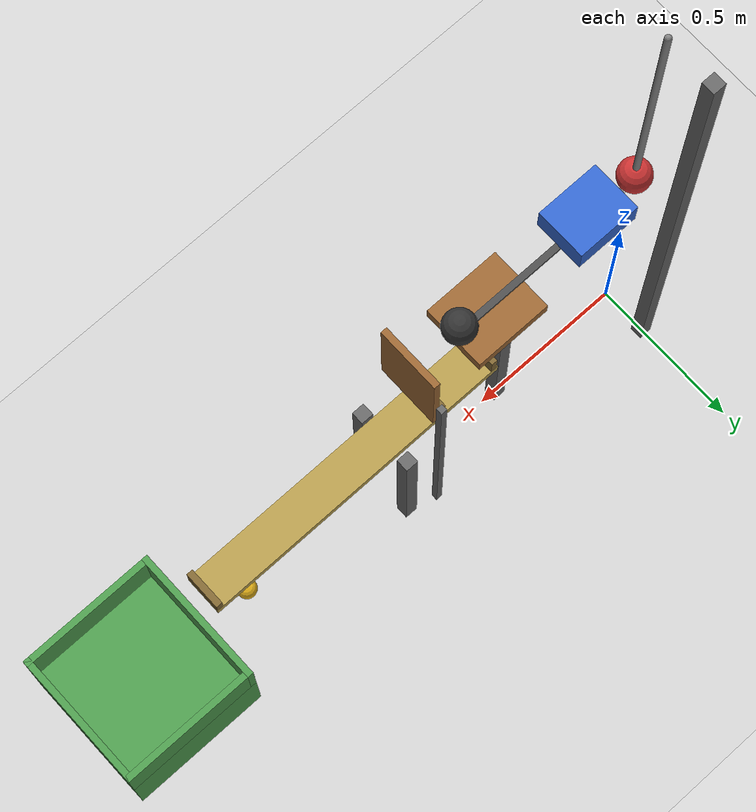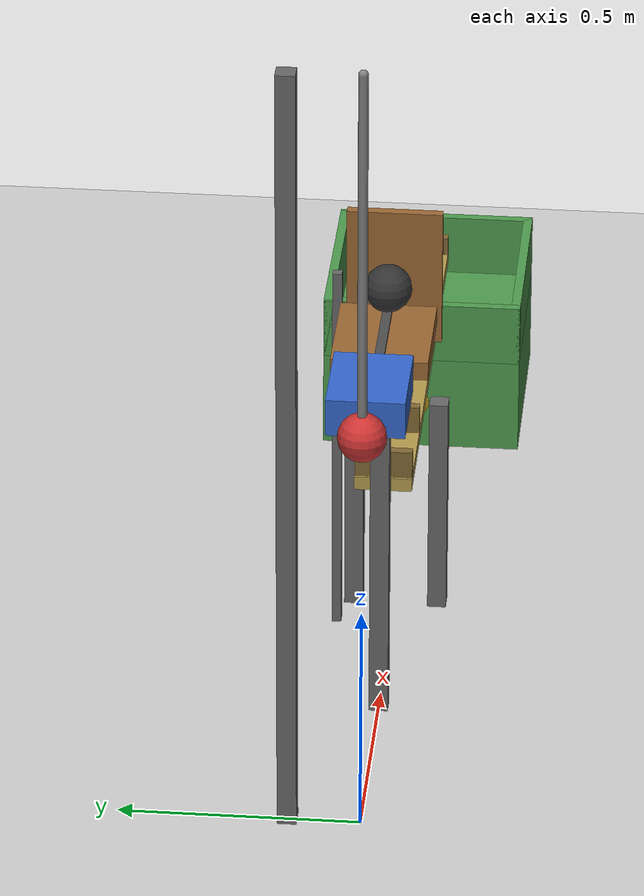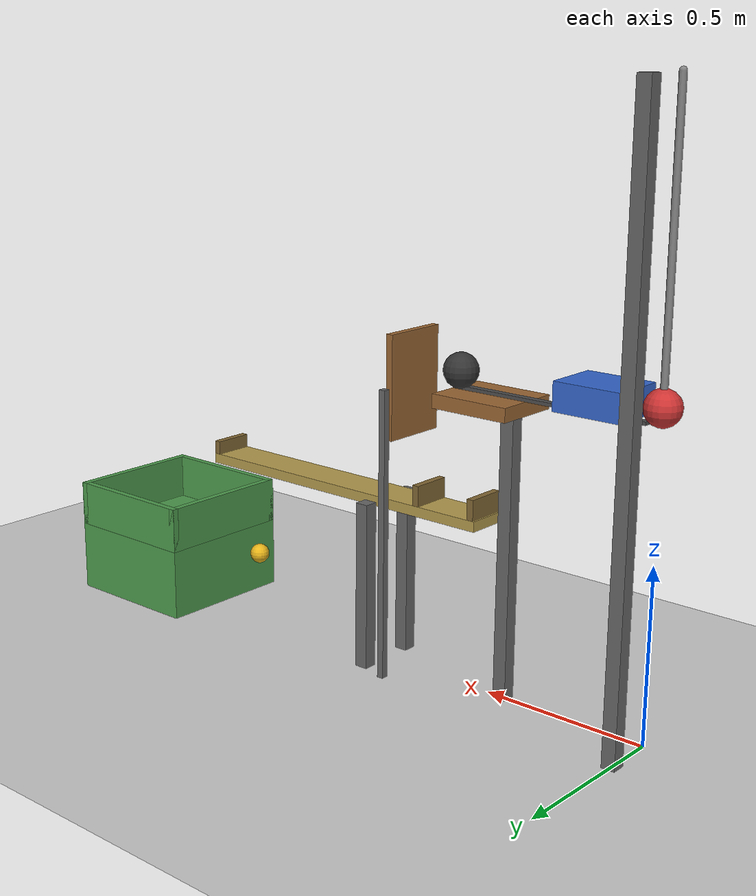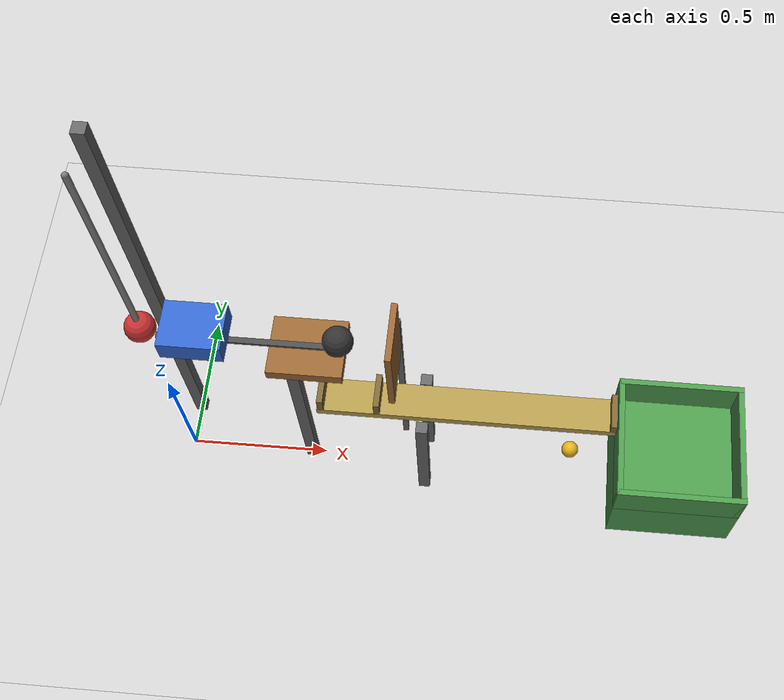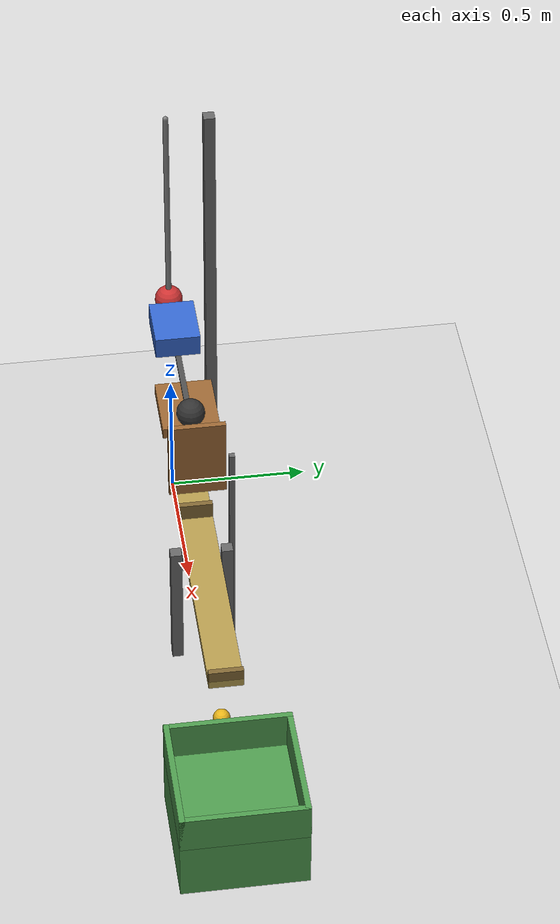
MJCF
<mujoco model="pendulum_cart_seesaw_cup">
  <option timestep="0.002"/>
  <worldbody>
    <light name="sun" pos="0.8 -1 3" dir="0 0.3 -1" directional="true"/>
    <geom name="floor" type="plane" pos="0 0 0" size="3 3 0.1" rgba="0.8 0.8 0.8 1"/>
    <geom name="pendulum_support" type="box" pos="0 0.15 0.855" size="0.02 0.02 0.855" contype="0" conaffinity="0" rgba="0.4 0.4 0.4 1"/>
    <geom name="cart_rail" type="box" pos="0.34 0 0.865" size="0.3 0.01 0.005" contype="0" conaffinity="0" rgba="0.3 0.3 0.3 1"/>
    <geom name="shelf" type="box" pos="0.52 0 0.84" size="0.12 0.1 0.02" rgba="0.6 0.4 0.2 1"/>
    <geom name="shelf_post" type="box" pos="0.45 0 0.41" size="0.02 0.02 0.41" contype="0" conaffinity="0" rgba="0.4 0.4 0.4 1"/>
    <geom name="backstop" type="box" pos="0.79 0 0.85" size="0.01 0.1 0.15" rgba="0.6 0.4 0.2 1"/>
    <geom name="backstop_post" type="box" pos="0.79 0.12 0.425" size="0.01 0.01 0.425" contype="0" conaffinity="0" rgba="0.4 0.4 0.4 1"/>
    <geom name="seesaw_support_a" type="box" pos="0.88 0.09 0.25" size="0.02 0.02 0.25" contype="0" conaffinity="0" rgba="0.4 0.4 0.4 1"/>
    <geom name="seesaw_support_b" type="box" pos="0.88 -0.09 0.25" size="0.02 0.02 0.25" contype="0" conaffinity="0" rgba="0.4 0.4 0.4 1"/>

    <body name="pendulum" pos="0 0 1.71">
      <joint name="pendulum_hinge" type="hinge" axis="0 1 0" pos="0 0 0" damping="0"/>
      <geom name="pendulum_rod" type="capsule" fromto="0 0 0 0 0 -0.75" size="0.01" mass="0.1" contype="0" conaffinity="0" rgba="0.5 0.5 0.5 1"/>
      <geom name="pendulum_bob" type="sphere" pos="0 0 -0.8" size="0.05" mass="1.0" rgba="0.8 0.2 0.2 1"/>
    </body>

    <body name="cart" pos="0.17 0 0.91">
      <joint name="cart_slide" type="slide" axis="1 0 0" limited="true" range="0 0.34" damping="0"/>
      <geom name="cart_box" type="box" size="0.1 0.08 0.04" mass="2.0" rgba="0.2 0.4 0.8 1"/>
    </body>

    <body name="weight" pos="0.62 0 0.91">
      <freejoint name="weight_free"/>
      <geom name="weight_sphere" type="sphere" size="0.05" mass="1.5" rgba="0.2 0.2 0.2 1"/>
    </body>

    <body name="seesaw" pos="0.88 0 0.5">
      <joint name="seesaw_hinge" type="hinge" axis="0 1 0" pos="0 0 0" limited="true" range="0.2 0.6" damping="0"/>
      <geom name="seesaw_plank" type="box" pos="0.145 0 0" size="0.505 0.06 0.015" mass="0.4" rgba="0.7 0.6 0.3 1"/>
      <geom name="seesaw_pocket_outer" type="box" pos="-0.345 0 0.045" size="0.01 0.06 0.03" mass="0.02" rgba="0.5 0.4 0.2 1"/>
      <geom name="seesaw_pocket_inner" type="box" pos="-0.155 0 0.045" size="0.01 0.06 0.03" mass="0.02" rgba="0.5 0.4 0.2 1"/>
      <geom name="seesaw_stopper" type="box" pos="0.64 0 0.035" size="0.01 0.06 0.02" mass="0.02" rgba="0.5 0.4 0.2 1"/>
    </body>

    <body name="ball" pos="1.4006 0 0.1983">
      <freejoint name="ball_free"/>
      <geom name="ball_sphere" type="sphere" size="0.03" mass="0.05" condim="6" friction="1 0.01 0.002" rgba="0.9 0.7 0.1 1"/>
    </body>

    <body name="cup" pos="0 0 0">
      <geom name="cup_base" type="box" pos="1.777 0 0.11" size="0.22 0.22 0.11" rgba="0.3 0.6 0.3 1"/>
      <geom name="cup_wall_left" type="box" pos="1.567 0 0.29" size="0.01 0.22 0.07" rgba="0.3 0.6 0.3 1"/>
      <geom name="cup_wall_right" type="box" pos="1.987 0 0.29" size="0.01 0.22 0.07" rgba="0.3 0.6 0.3 1"/>
      <geom name="cup_wall_front" type="box" pos="1.777 -0.21 0.29" size="0.22 0.01 0.07" rgba="0.3 0.6 0.3 1"/>
      <geom name="cup_wall_back" type="box" pos="1.777 0.21 0.29" size="0.22 0.01 0.07" rgba="0.3 0.6 0.3 1"/>
    </body>
  </worldbody>

  <keyframe>
    <key name="start" qpos="1.318116 0 0.62 0 0.91 1 0 0 0 0.6 1.4006 0 0.1983 1 0 0 0"/>
  </keyframe>
</mujoco>
